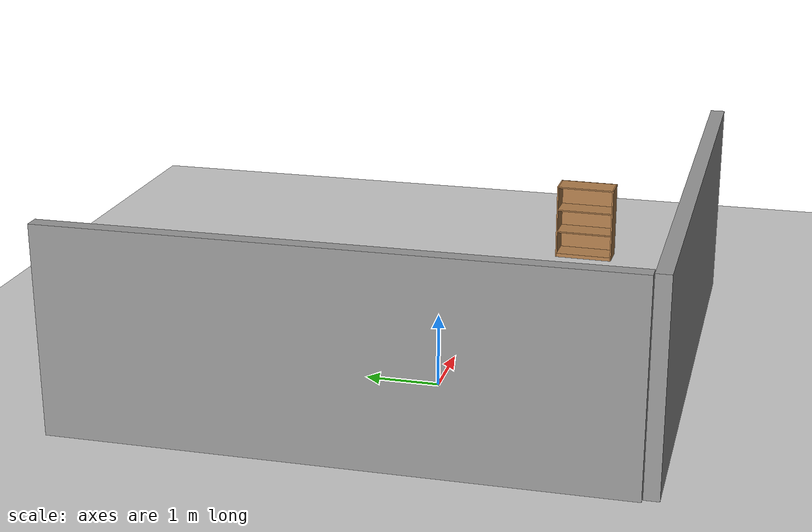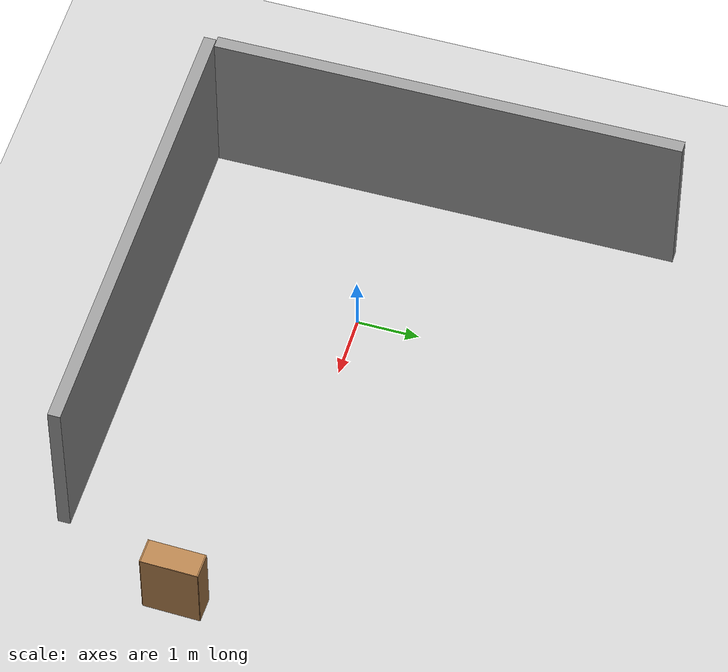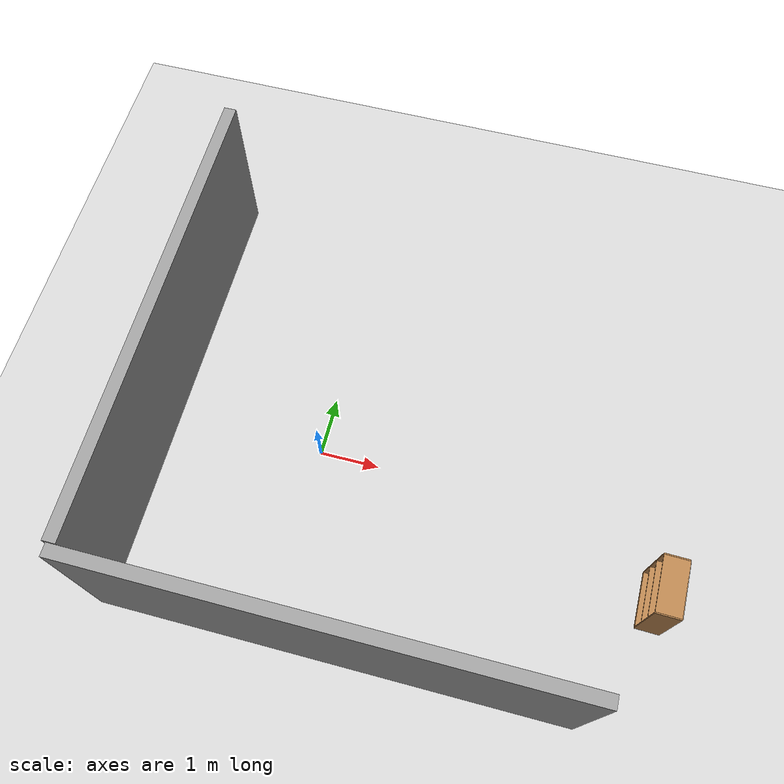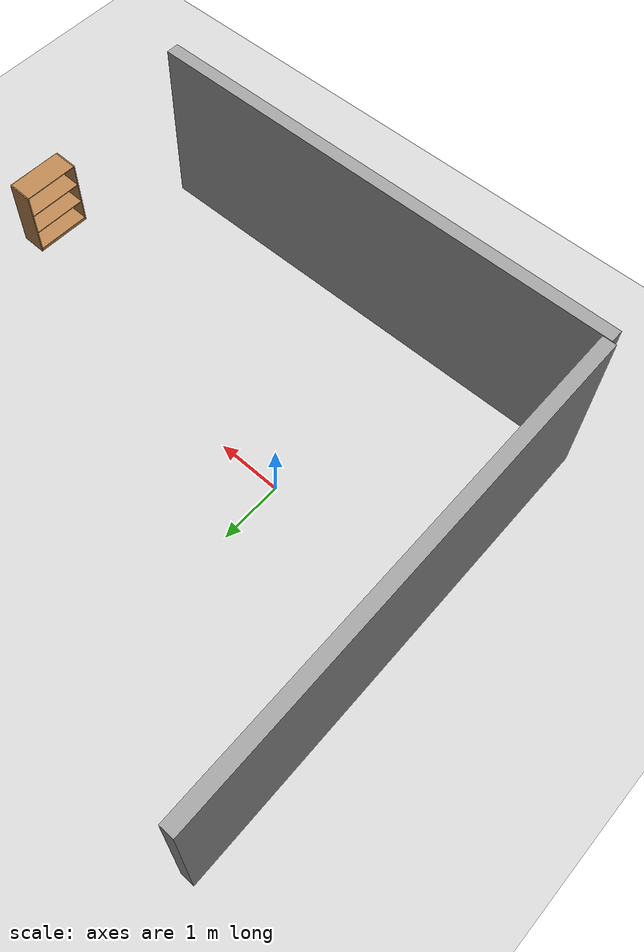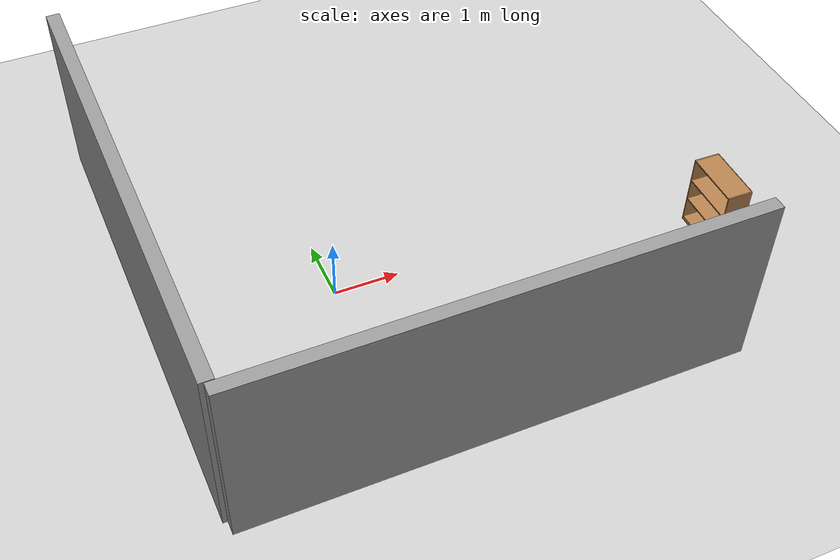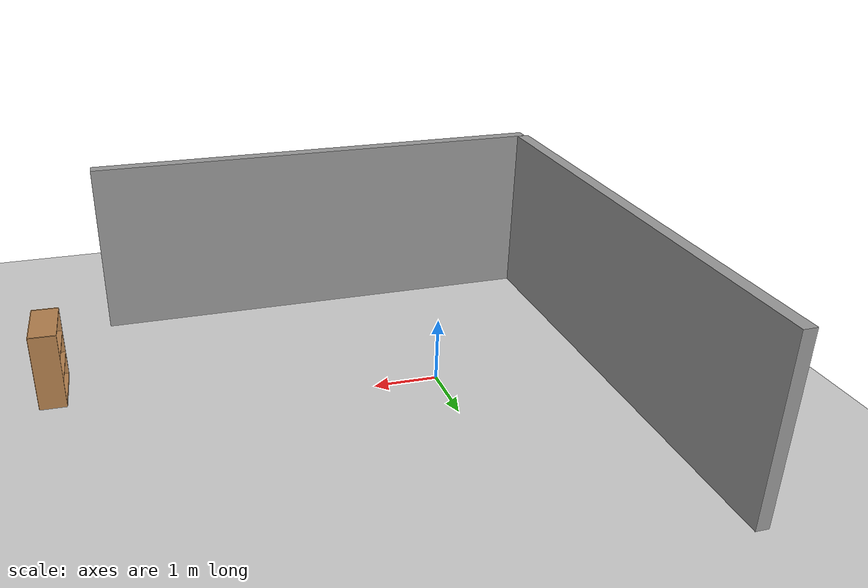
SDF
<sdf version="1.6">
 <world name="default">
  <model name="ground_plane">
   <static>1</static>
   <link name="link">
    <collision name="collision">
     <geometry><plane><normal>0 0 1</normal><size>100 100</size></plane></geometry>
     <surface><friction><ode><mu>100</mu><mu2>50</mu2></ode></friction></surface>
    </collision>
    <visual name="visual">
     <cast_shadows>0</cast_shadows>
     <geometry><plane><normal>0 0 1</normal><size>100 100</size></plane></geometry>
     <material>
      <script><uri>file://media/materials/scripts/gazebo.material</uri><name>Gazebo/Grey</name></script>
     </material>
    </visual>
   </link>
  </model>
  <model name="grey_wall_5">
   <static>1</static>
   <link name="link">
    <pose>0 0 1.4 0 -0 0</pose>
    <collision name="collision"><geometry><box><size>7.5 0.2 2.8</size></box></geometry></collision>
    <visual name="visual">
     <cast_shadows>0</cast_shadows>
     <geometry><box><size>7.5 0.2 2.8</size></box></geometry>
     <material>
      <script>
       <uri>model://grey_wall/materials/scripts</uri>
       <uri>model://grey_wall/materials/textures</uri>
       <name>vrc/grey_wall</name>
      </script>
     </material>
    </visual>
   </link>
   <pose>1.10753 -3.17924 0 0 -0 0</pose>
  </model>
  <model name="grey_wall_8">
   <static>1</static>
   <link name="link">
    <pose>0 0 1.4 0 -0 0</pose>
    <collision name="collision"><geometry><box><size>7.5 0.2 2.8</size></box></geometry></collision>
    <visual name="visual">
     <cast_shadows>0</cast_shadows>
     <geometry><box><size>7.5 0.2 2.8</size></box></geometry>
     <material>
      <script>
       <uri>model://grey_wall/materials/scripts</uri>
       <uri>model://grey_wall/materials/textures</uri>
       <name>vrc/grey_wall</name>
      </script>
     </material>
    </visual>
   </link>
   <pose>-2.6312 0.678793 0 0 0 -1.56473</pose>
  </model>
  <model name="bookshelf">
   <static>1</static>
   <link name="link">
    <inertial><mass>1</mass></inertial>
    <collision name="back">
     <pose>0 0.005 0.6 0 -0 0</pose>
     <geometry><box><size>0.9 0.01 1.2</size></box></geometry>
    </collision>
    <visual name="visual1">
     <pose>0 0.005 0.6 0 -0 0</pose>
     <geometry><box><size>0.9 0.01 1.2</size></box></geometry>
     <material>
      <script><uri>file://media/materials/scripts/gazebo.material</uri><name>Gazebo/Wood</name></script>
     </material>
    </visual>
    <collision name="left_side">
     <pose>0.45 -0.195 0.6 0 -0 0</pose>
     <geometry><box><size>0.02 0.4 1.2</size></box></geometry>
    </collision>
    <visual name="visual2">
     <pose>0.45 -0.195 0.6 0 -0 0</pose>
     <geometry><box><size>0.02 0.4 1.2</size></box></geometry>
     <material>
      <script><uri>file://media/materials/scripts/gazebo.material</uri><name>Gazebo/Wood</name></script>
     </material>
    </visual>
    <collision name="right_side">
     <pose>-0.45 -0.195 0.6 0 -0 0</pose>
     <geometry><box><size>0.02 0.4 1.2</size></box></geometry>
    </collision>
    <visual name="visual3">
     <pose>-0.45 -0.195 0.6 0 -0 0</pose>
     <geometry><box><size>0.02 0.4 1.2</size></box></geometry>
     <material>
      <script><uri>file://media/materials/scripts/gazebo.material</uri><name>Gazebo/Wood</name></script>
     </material>
    </visual>
    <collision name="bottom">
     <pose>0 -0.195 0.03 0 -0 0</pose>
     <geometry><box><size>0.88 0.4 0.06</size></box></geometry>
    </collision>
    <visual name="visual4">
     <pose>0 -0.195 0.03 0 -0 0</pose>
     <geometry><box><size>0.88 0.4 0.06</size></box></geometry>
     <material>
      <script><uri>file://media/materials/scripts/gazebo.material</uri><name>Gazebo/Wood</name></script>
     </material>
    </visual>
    <collision name="top">
     <pose>0 -0.195 1.19 0 -0 0</pose>
     <geometry><box><size>0.88 0.4 0.02</size></box></geometry>
    </collision>
    <visual name="visual5">
     <pose>0 -0.195 1.19 0 -0 0</pose>
     <geometry><box><size>0.88 0.4 0.02</size></box></geometry>
     <material>
      <script><uri>file://media/materials/scripts/gazebo.material</uri><name>Gazebo/Wood</name></script>
     </material>
    </visual>
    <collision name="low_shelf">
     <pose>0 -0.195 0.43 0 -0 0</pose>
     <geometry><box><size>0.88 0.4 0.02</size></box></geometry>
    </collision>
    <visual name="visual6">
     <pose>0 -0.195 0.43 0 -0 0</pose>
     <geometry><box><size>0.88 0.4 0.02</size></box></geometry>
     <material>
      <script><uri>file://media/materials/scripts/gazebo.material</uri><name>Gazebo/Wood</name></script>
     </material>
    </visual>
    <collision name="high_shelf">
     <pose>0 -0.195 0.8 0 -0 0</pose>
     <geometry><box><size>0.88 0.4 0.02</size></box></geometry>
    </collision>
    <visual name="visual7">
     <pose>0 -0.195 0.8 0 -0 0</pose>
     <geometry><box><size>0.88 0.4 0.02</size></box></geometry>
     <material>
      <script><uri>file://media/materials/scripts/gazebo.material</uri><name>Gazebo/Wood</name></script>
     </material>
    </visual>
   </link>
   <pose>5.93679 -1.11713 0 0 0 -1.59152</pose>
  </model>
 </world>
</sdf>
